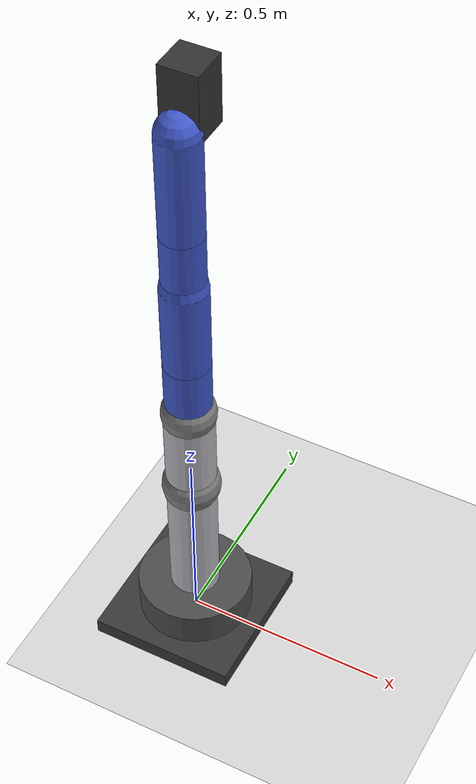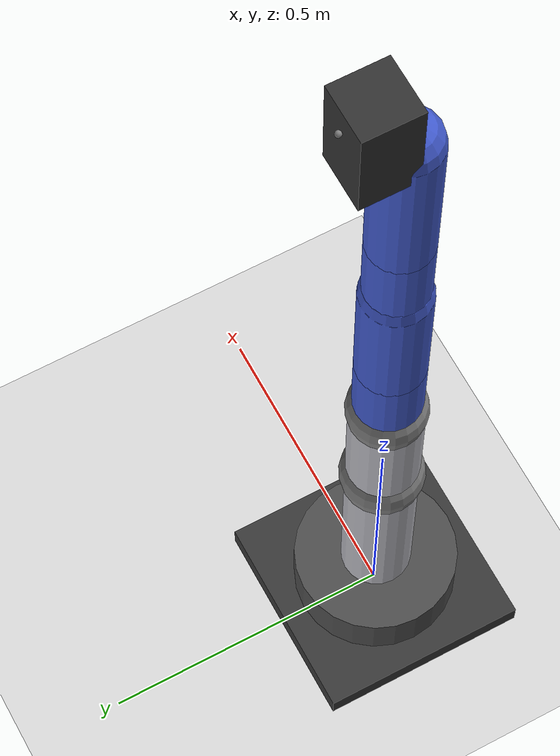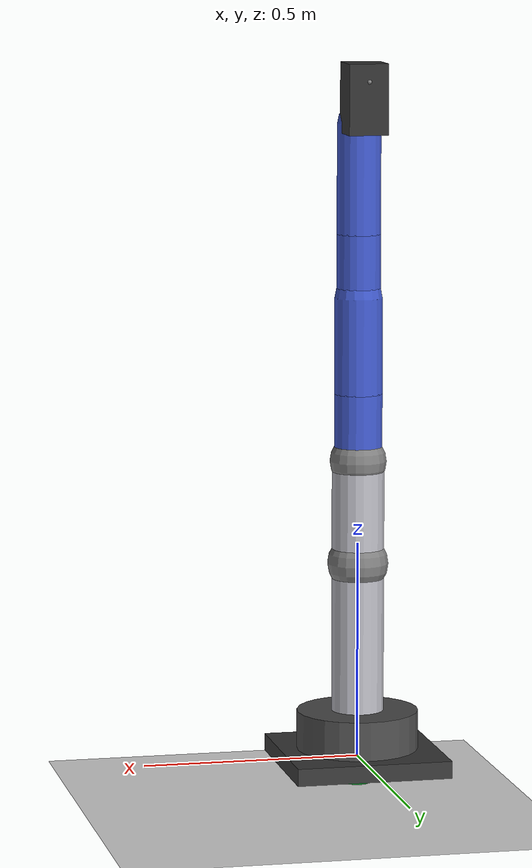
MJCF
<mujoco model="rokae_xmate_pro7">
  <compiler angle="radian" autolimits="true"/>
  <!-- Zero-gravity reach task so the full 7-DOF can be learned reliably. -->
  <option timestep="0.02" gravity="0 0 0" integrator="Euler"/>

  <default>
    <joint damping="0.5" armature="0.02"/>
    <geom friction="0.6 0.1 0.1" density="900"/>
    <motor ctrllimited="true" ctrlrange="-1 1" forcerange="-1 1"/>
  </default>

  <asset>
    <texture name="tex" type="2d" builtin="checker" rgb1="0.16 0.16 0.16" rgb2="0.26 0.26 0.26" width="256" height="256"/>
    <material name="floor" texture="tex" texrepeat="6 6" reflectance="0.3"/>
  </asset>

  <worldbody>
    <light name="light" pos="3.0 -2.4 4.2" dir="-0.5 0.4 -1" diffuse="0.9 0.9 0.9" specular="0.1 0.1 0.1"/>
    <camera name="cam_iso" pos="2.9 -2.9 2.4" xyaxes="0.7071 0.7071 0 -0.343 0.343 0.875" fovy="50"/>
    <geom name="floor" type="plane" size="4 4 0.1" pos="0 0 -0.06" rgba="0.85 0.85 0.85 1" material="floor" contype="0" conaffinity="0"/>

    <!-- Fixed pedestal. -->
    <body name="base" pos="0 0 0">
      <geom name="base_pedestal" type="cylinder" size="0.14 0.06" pos="0 0 0.05" rgba="0.30 0.30 0.30 1"/>
      <geom name="base_plate" type="box" size="0.18 0.18 0.02" pos="0 0 0.0" rgba="0.22 0.22 0.22 1"/>
      <site name="base_site" pos="0 0 0.06"/>

      <body name="link1" pos="0 0 0.05">
        <joint name="joint1" type="hinge" axis="0 0 1" limited="true"
               range="-3.0527 3.0527"/>
        <geom name="link1_geom" type="capsule" fromto="0 0 0 0 0 0.404"
              size="0.06" rgba="0.72 0.72 0.75 1"/>
        <geom name="link1_shoulder" type="sphere" size="0.07" pos="0 0 0.404"
              rgba="0.5 0.5 0.5 1"/>
        <site name="joint2_site" pos="0 0 0.404"/>

        <body name="link2" pos="0 0 0.404">
          <joint name="joint2" type="hinge" axis="0 1 0" limited="true"
                 range="-2.0933 2.0933"/>
          <geom name="link2_geom" type="capsule" fromto="0 0 0 0 0 0.23743878"
                size="0.06" rgba="0.72 0.72 0.75 1"/>
          <geom name="link2_mid" type="sphere" size="0.065" pos="0 0 0.23743878"
                rgba="0.5 0.5 0.5 1"/>
          <site name="joint3_site" pos="0 0 0.23743878"/>

          <body name="link3" pos="0 0 0.23743878">
            <joint name="joint3" type="hinge" axis="0 0 1" limited="true"
                   range="-3.0527 3.0527"/>
            <geom name="link3_geom" type="capsule" fromto="0 0 0 0 0 0.15549959"
                  size="0.055" rgba="0.25 0.35 0.80 1"/>
            <site name="joint4_site" pos="0 0 0.15549959"/>

            <body name="link4" pos="0 0 0.15549959">
              <joint name="joint4" type="hinge" axis="0 1 0" limited="true"
                     range="-2.0933 2.0933"/>
              <geom name="link4_geom" type="capsule" fromto="0 0 0 0 0 0.22044633"
                    size="0.055" rgba="0.25 0.35 0.80 1"/>
              <site name="joint5_site" pos="0 0 0.22044633"/>

              <body name="link5" pos="0 0 0.22044633">
                <joint name="joint5" type="hinge" axis="0 0 1" limited="true"
                       range="-3.0527 3.0527"/>
                <geom name="link5_geom" type="capsule" fromto="0 0 0 0 0 0.14512568"
                      size="0.05" rgba="0.25 0.35 0.80 1"/>
                <site name="joint6_site" pos="0 0 0.14512568"/>

                <body name="link6" pos="0 0 0.14512568">
                  <joint name="joint6" type="hinge" axis="0 1 0" limited="true"
                         range="-2.0933 2.0933"/>
                  <geom name="link6_geom" type="capsule" fromto="0 0 0 0 0 0.25090877"
                        size="0.05" rgba="0.25 0.35 0.80 1"/>
                  <site name="joint7_site" pos="0 0 0.25090877"/>

                  <body name="link7" pos="0 0 0.25090877">
                    <joint name="joint7" type="hinge" axis="0 0 1" limited="true"
                           range="-6.283 6.283"/>
                    <geom name="link7_tool" type="box" size="0.045 0.045 0.08"
                          pos="0 0.05 0.06" rgba="0.2 0.2 0.2 1"/>
                    <!-- Off-axis tool tip: every one of the 7 joints affects it. -->
                    <site name="tool" pos="0 0.10 0.10"/>
                  </body>
                </body>
              </body>
            </body>
          </body>
        </body>
      </body>
    </body>

    <!-- Kinematic target. -->
    <body name="target" mocap="true">
      <geom name="target_geom" type="sphere" size="0.07" rgba="0.10 0.75 0.25 1"
            contype="0" conaffinity="0"/>
      <site name="target_site" pos="0 0 0"/>
    </body>
  </worldbody>

  <actuator>
    <motor name="a1" joint="joint1" gear="10.0"/>
    <motor name="a2" joint="joint2" gear="10.0"/>
    <motor name="a3" joint="joint3" gear="8.0"/>
    <motor name="a4" joint="joint4" gear="6.0"/>
    <motor name="a5" joint="joint5" gear="5.0"/>
    <motor name="a6" joint="joint6" gear="4.0"/>
    <motor name="a7" joint="joint7" gear="3.0"/>
  </actuator>

  <sensor>
    <jointpos name="jp1" joint="joint1"/>
    <jointpos name="jp2" joint="joint2"/>
    <jointpos name="jp3" joint="joint3"/>
    <jointpos name="jp4" joint="joint4"/>
    <jointpos name="jp5" joint="joint5"/>
    <jointpos name="jp6" joint="joint6"/>
    <jointpos name="jp7" joint="joint7"/>
    <jointvel name="jv1" joint="joint1"/>
    <jointvel name="jv2" joint="joint2"/>
    <jointvel name="jv3" joint="joint3"/>
    <jointvel name="jv4" joint="joint4"/>
    <jointvel name="jv5" joint="joint5"/>
    <jointvel name="jv6" joint="joint6"/>
    <jointvel name="jv7" joint="joint7"/>
  </sensor>
</mujoco>
